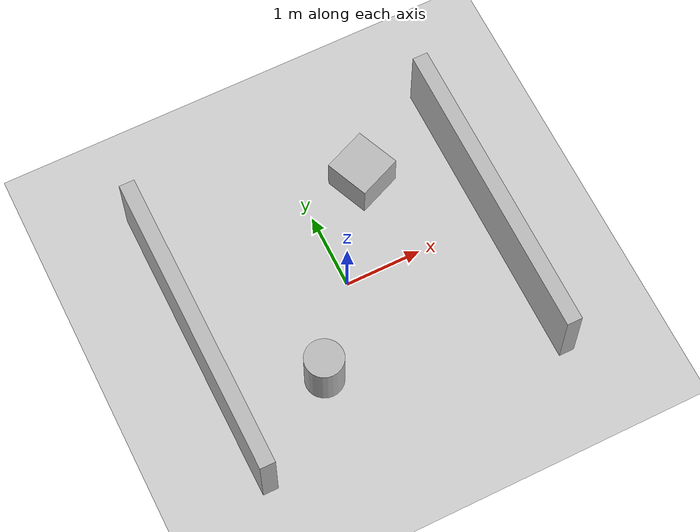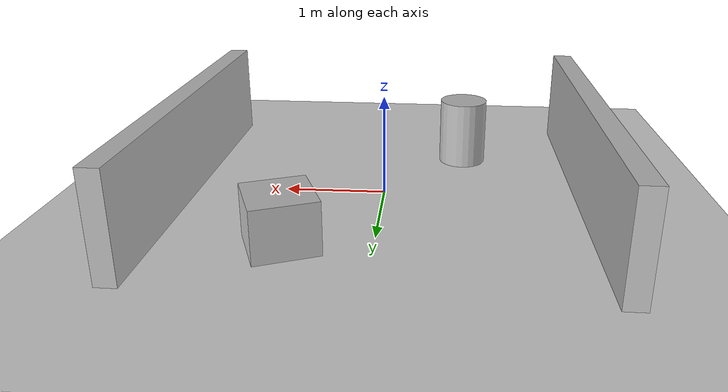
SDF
<?xml version="1.0" ?>
<sdf version="1.9">
  <world name="empty">

    <plugin filename="gz-sim-physics-system" name="gz::sim::systems::Physics"/>
    <plugin filename="gz-sim-user-commands-system" name="gz::sim::systems::UserCommands"/>
    <plugin filename="gz-sim-scene-broadcaster-system" name="gz::sim::systems::SceneBroadcaster"/>
    <plugin filename="gz-sim-sensors-system" name="gz::sim::systems::Sensors">
      <render_engine>ogre2</render_engine>
    </plugin>

    <physics name="default_physics" default="true" type="ode">
      <max_step_size>0.001</max_step_size>
      <real_time_factor>1.0</real_time_factor>
    </physics>

    <light type="directional" name="sun">
      <cast_shadows>true</cast_shadows>
      <pose>0 0 10 0 0 0</pose>
      <diffuse>0.8 0.8 0.8 1</diffuse>
      <specular>0.2 0.2 0.2 1</specular>
      <attenuation>
        <range>1000</range>
        <constant>0.9</constant>
        <linear>0.01</linear>
        <quadratic>0.001</quadratic>
      </attenuation>
      <direction>-0.5 0.1 -0.9</direction>
    </light>

    <model name="ground_plane">
      <static>true</static>
      <link name="link">
        <collision name="collision">
          <geometry>
            <plane>
              <normal>0 0 1</normal>
              <size>100 100</size>
            </plane>
          </geometry>
        </collision>
        <visual name="visual">
          <geometry>
            <plane>
              <normal>0 0 1</normal>
              <size>100 100</size>
            </plane>
          </geometry>
          <material>
            <ambient>0.8 0.8 0.8 1</ambient>
            <diffuse>0.8 0.8 0.8 1</diffuse>
            <specular>0.8 0.8 0.8 1</specular>
          </material>
        </visual>
      </link>
    </model>

    <model name="wall_1">
      <static>true</static>
      <pose>2.0 0.0 0.5 0 0 0</pose>
      <link name="link">
        <collision name="collision">
          <geometry>
            <box>
              <size>0.2 4.0 1.0</size>
            </box>
          </geometry>
        </collision>
        <visual name="visual">
          <geometry>
            <box>
              <size>0.2 4.0 1.0</size>
            </box>
          </geometry>
        </visual>
      </link>
    </model>

    <model name="wall_2">
      <static>true</static>
      <pose>-2.0 0.0 0.5 0 0 0</pose>
      <link name="link">
        <collision name="collision">
          <geometry>
            <box>
              <size>0.2 4.0 1.0</size>
            </box>
          </geometry>
        </collision>
        <visual name="visual">
          <geometry>
            <box>
              <size>0.2 4.0 1.0</size>
            </box>
          </geometry>
        </visual>
      </link>
    </model>

    <model name="box_1">
      <static>true</static>
      <pose>0.8 1.2 0.25 0 0 0.4</pose>
      <link name="link">
        <collision name="collision">
          <geometry>
            <box>
              <size>0.6 0.6 0.5</size>
            </box>
          </geometry>
        </collision>
        <visual name="visual">
          <geometry>
            <box>
              <size>0.6 0.6 0.5</size>
            </box>
          </geometry>
        </visual>
      </link>
    </model>

    <model name="cylinder_1">
      <static>true</static>
      <pose>-0.8 -1.0 0.35 0 0 0</pose>
      <link name="link">
        <collision name="collision">
          <geometry>
            <cylinder>
              <radius>0.25</radius>
              <length>0.7</length>
            </cylinder>
          </geometry>
        </collision>
        <visual name="visual">
          <geometry>
            <cylinder>
              <radius>0.25</radius>
              <length>0.7</length>
            </cylinder>
          </geometry>
        </visual>
      </link>
    </model>
  </world>
</sdf>
